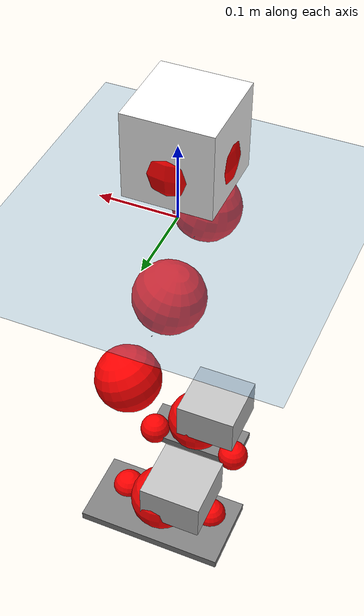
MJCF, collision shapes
<mujoco model="pi_12dof_release_v1">
  <compiler angle="radian" assetdir="assets" balanceinertia="true" inertiafromgeom="false"/>

  <option timestep="0.005" density="1.2" viscosity="2e-05"/>

  <size nkey="1"/>

  <visual>
    <quality shadowsize="8192"/>
    <map shadowclip="0.5"/>
  </visual>

  <default>
    <default class="/">
      <joint armature="0.01" damping="0.01" frictionloss="0.01"/>
      <geom contype="0" conaffinity="0" group="1" solref="-1000 -80"/>
      <site size="0.01 0.005 0.005" group="5"/>
      <general forcelimited="true" biastype="affine" gainprm="20" biasprm="0 -20 -0.5"/>
      <default class="foot">
        <geom size="0.0845 0.036 0.005" type="box" condim="6" group="4" priority="1" friction="0.9 0.2 0.2" solimp="0.015 1 0.005"/>
      </default>
      <default class="reward_collision_sphere">
        <geom group="5" rgba="1 0 0 1"/>
      </default>
    </default>
  </default>

  <asset>
    <texture type="skybox" colorspace="auto" name="//unnamed_texture_0" builtin="gradient" rgb1="0.95 0.95 0.95" rgb2="0.95 0.95 0.95" width="100" height="600"/>
    <texture type="2d" colorspace="auto" name="texplane" builtin="checker" rgb1="0.345 0.575 0.748" rgb2="0.345 0.575 0.748" markrgb="1 1 1" width="512" height="512"/>
    <material name="MatPlane" class="/" texture="texplane" texuniform="true" texrepeat="2 2" specular="0.9"/>
    <mesh name="baselink_1" class="/" file="baselink_1.STL"/>
    <mesh name="r_hip_pitch_link" class="/" file="r_hip_pitch_link.STL"/>
    <mesh name="r_hip_roll_link" class="/" file="r_hip_roll_link.STL"/>
    <mesh name="r_thigh_link" class="/" file="r_thigh_link.STL"/>
    <mesh name="r_calf_link" class="/" file="r_calf_link.STL"/>
    <mesh name="r_ankle_pitch_link" class="/" file="r_ankle_pitch_link.STL"/>
    <mesh name="r_ankle_roll_link" class="/" file="r_ankle_roll_link.STL"/>
    <mesh name="l_hip_pitch_link" class="/" file="l_hip_pitch_link.STL"/>
    <mesh name="l_hip_roll_link" class="/" file="l_hip_roll_link.STL"/>
    <mesh name="l_thigh_link" class="/" file="l_thigh_link.STL"/>
    <mesh name="l_calf_link" class="/" file="l_calf_link.STL"/>
    <mesh name="l_ankle_pitch_link" class="/" file="l_ankle_pitch_link.STL"/>
    <mesh name="l_ankle_roll_link" class="/" file="l_ankle_roll_link.STL"/>
  </asset>

  <worldbody>
    <geom name="floor" class="/" size="100 100 0.125" type="plane" group="0" material="MatPlane"/>
    <light name="toplight_shadow" class="/" pos="0 0 5" dir="0.0990148 0.0990148 -0.990148" type="directional" ambient="0.04 0.04 0.04" diffuse="0.55 0.55 0.55" specular="0.12 0.12 0.12"/>
    <light name="toplight_fill" class="/" pos="0 0 5" dir="0.0990148 0.0990148 -0.990148" type="directional" castshadow="false" ambient="0.04 0.04 0.04" diffuse="0.3 0.3 0.3" specular="0.08 0.08 0.08"/>
    <body name="trunk" pos="-0.00871687 -0.00217856 -0.00163347" quat="1 2.98501e-05 -0.000143449 3.14049e-05">
      <inertial pos="0.00326446 -0.00253262 0.0556895" quat="0.698986 0.016897 0.0267803 0.714434" mass="2.78633" diaginertia="0.00511187 0.00584157 0.0206799"/>
      <joint name="//unnamed_joint_0" type="free"/>
      <geom name="//unnamed_geom_1" class="/" type="mesh" density="0" rgba="1 1 1 1" mesh="baselink_1"/>
      <geom name="//unnamed_geom_2" class="/" size="0.0541544 0.0541544 0.0541544" pos="0 0 0.110725" type="box" rgba="1 1 1 1"/>
      <geom name="//unnamed_geom_3" class="reward_collision_sphere" size="0.0595699" pos="0 0 0.0968844"/>
      <site name="imu" class="/" pos="-0.00353328 -0.00500311 0.0510545" size="0.0108309"/>
      <camera name="track" class="/" pos="0 -1.89579 0" quat="0.707107 0.707107 0 0" mode="trackcom"/>
      <camera name="ego_camera" class="/" pos="0.0687979 0 0.249131" quat="-0.5 -0.5 0.5 0.5"/>
      <body name="r_hip_pitch_link" pos="-0.00312456 -0.0199375 -0.0411032" quat="0.991996 -0.00214595 -0.12622 0.00285049">
        <inertial pos="0.0104872 -0.0502201 4.28852e-05" quat="-0.0152513 0.704672 -0.0309196 0.708695" mass="0.459563" diaginertia="6.88275e-05 7.90459e-05 0.00040657"/>
        <joint name="r_hip_pitch_joint" class="/" pos="0 0 0" axis="-0.0236979 -0.999309 -0.0286318" range="-1.94055 1.14051" armature="0.0110773" damping="0" frictionloss="0.0105309"/>
        <geom name="//unnamed_geom_4" class="/" type="mesh" density="0" rgba="0.75294 0.75294 0.75294 1" mesh="r_hip_pitch_link"/>
        <geom name="//unnamed_geom_5" class="/" size="0.000541544 0.000541544 0.000541544" type="box" rgba="0.75294 0.75294 0.75294 1"/>
        <body name="r_hip_roll_link" pos="0.00540605 -0.0521888 0.00427687" quat="0.999999 0.000464496 0.0011778 0.000288812">
          <inertial pos="-0.000452618 -0.000896009 -0.0734871" quat="0.714269 -0.0681608 -0.0835958 0.69151" mass="0.514349" diaginertia="0.000226127 0.000217237 0.000650705"/>
          <joint name="r_hip_roll_joint" class="/" pos="0 0 0" axis="-0.999257 -0.037484 -0.0089468" stiffness="0.000407156" range="-0.092998 0.326704" armature="0.00922861" damping="0.0230868" frictionloss="0.014199"/>
          <geom name="//unnamed_geom_6" class="/" type="mesh" density="0" rgba="0.75294 0.75294 0.75294 1" mesh="r_hip_roll_link"/>
          <geom name="//unnamed_geom_7" class="/" size="0.000541544 0.000541544 0.000541544" type="box" rgba="0.75294 0.75294 0.75294 1"/>
          <geom name="//unnamed_geom_8" class="reward_collision_sphere" size="0.0433235"/>
          <body name="r_thigh_link" pos="-0.00315788 0.0112869 -0.0950247" quat="0.999995 -0.00209746 0.00097582 -0.00199372">
            <inertial pos="-0.00322162 0.00113989 -0.0658247" quat="0.735419 0.675917 -0.00209278 -0.0478564" mass="0.126716" diaginertia="8.27358e-05 6.89468e-05 0.000303984"/>
            <joint name="r_thigh_joint" class="/" pos="0 0 0" axis="0.0124538 0.0178794 -0.999763" stiffness="0.0513681" range="-0.423724 0.392463" armature="0.0113958" damping="0.0112989" frictionloss="0.012498"/>
            <geom name="//unnamed_geom_9" class="/" type="mesh" density="0" rgba="0.75294 0.75294 0.75294 1" mesh="r_thigh_link"/>
            <geom name="//unnamed_geom_10" class="/" size="0.000541544 0.000541544 0.000541544" type="box" rgba="0.75294 0.75294 0.75294 1"/>
            <body name="r_calf_link" pos="0.0108149 -0.0129096 -0.0896442" quat="0.9475 0.000718992 0.319756 -0.000569834">
              <inertial pos="-0.0107249 -0.00165429 -0.0872416" quat="0.999759 -0.00310539 -0.0195755 -0.00944606" mass="0.915743" diaginertia="0.0019599 0.00250372 0.000780086"/>
              <joint name="r_calf_joint" class="/" pos="0 0 0" axis="-0.0476824 -0.998862 0.000386873" stiffness="0.0166256" range="-1.68406 0.649946" armature="0.00904485" damping="0.00453039" frictionloss="0.0104634"/>
              <geom name="//unnamed_geom_11" class="/" type="mesh" density="0" rgba="0.75294 0.75294 0.75294 1" mesh="r_calf_link"/>
              <geom name="//unnamed_geom_12" class="/" size="0.000541544 0.000541544 0.000541544" type="box" rgba="0.75294 0.75294 0.75294 1"/>
              <geom name="//unnamed_geom_13" class="reward_collision_sphere" size="0.0433235"/>
              <body name="r_ankle_pitch_link" pos="0.00116837 0.00659751 -0.198501" quat="0.980059 6.5856e-05 -0.198706 6.06444e-05">
                <inertial pos="0.00795753 -0.00829534 -0.000749134" quat="0.00222541 0.707102 -0.00222515 0.707105" mass="0.218791" diaginertia="0.000196938 0.000168167 0.000601023"/>
                <joint name="r_ankle_pitch_joint" class="/" pos="0 0 0" axis="0.0267146 -0.999637 -0.00348711" range="-1.35148 0.505463" armature="0.0147201" damping="0" frictionloss="0.0141351"/>
                <geom name="//unnamed_geom_14" class="/" type="mesh" density="0" rgba="0.75294 0.75294 0.75294 1" mesh="r_ankle_pitch_link"/>
                <geom name="//unnamed_geom_15" class="/" size="0.0422405 0.0433235 0.0270772" type="box" rgba="0.75294 0.75294 0.75294 1"/>
                <body name="r_ankle_roll_link" pos="0.0725139 0.00182562 -0.00799836" quat="0.999986 -0.00193286 -0.0039832 -0.00286724">
                  <inertial pos="-0.0335988 0.00556088 -0.0277773" quat="0.559522 0.432656 0.434396 0.557713" mass="0.716068" diaginertia="0.000694377 0.000701653 0.00123546"/>
                  <joint name="r_ankle_roll_joint" class="/" pos="0 0 0" axis="-0.998579 0.0532439 -0.00219142" stiffness="0.0234624" range="-0.135066 0.13631" armature="0.0105621" damping="0" frictionloss="0.0104081"/>
                  <geom name="//unnamed_geom_16" class="/" type="mesh" density="0" rgba="0.75294 0.75294 0.75294 1" mesh="r_ankle_roll_link"/>
                  <geom name="//unnamed_geom_17" class="/" type="mesh" rgba="0.75294 0.75294 0.75294 1" mesh="r_ankle_roll_link"/>
                  <geom name="right_foot" class="foot" size="0.0701353 0.0301289 0.00531027" pos="-0.0467826 0 -0.0608988"/>
                  <geom name="//unnamed_geom_19" class="reward_collision_sphere" size="0.0433235" pos="-0.0458653 0 -0.0276813"/>
                  <geom name="//unnamed_geom_20" class="reward_collision_sphere" size="0.0216618" pos="0.0137596 0.0189579 -0.0553625"/>
                  <geom name="//unnamed_geom_21" class="reward_collision_sphere" size="0.0216618" pos="-0.110077 0.0189579 -0.0553625"/>
                  <site name="right_foot" class="foot" pos="-0.0467826 0 -0.0608988" size="0.0108309"/>
                </body>
              </body>
            </body>
          </body>
        </body>
      </body>
      <body name="l_hip_pitch_link" pos="-0.0120414 0.0305024 -0.0449033" quat="0.992127 9.84595e-05 -0.125235 -0.000151226">
        <inertial pos="-0.00905314 0.0629754 0.000160615" quat="-0.0598033 0.714096 0.0619861 0.694729" mass="0.509481" diaginertia="8.29834e-05 7.94742e-05 0.000556414"/>
        <joint name="l_hip_pitch_joint" class="/" pos="0 0 0" axis="0.00828296 0.998327 0.0572217" stiffness="0.0442383" range="-1.06064 1.77652" armature="0.0160815" damping="0.0126003" frictionloss="0.00900561"/>
        <geom name="//unnamed_geom_22" class="/" type="mesh" density="0" rgba="0.75294 0.75294 0.75294 1" mesh="l_hip_pitch_link"/>
        <geom name="//unnamed_geom_23" class="/" size="0.000541544 0.000541544 0.000541544" type="box" rgba="0.75294 0.75294 0.75294 1"/>
        <body name="l_hip_roll_link" pos="-0.00407534 0.0515778 -7.75404e-05" quat="1 -0.000920572 -9.71852e-05 -0.00025856">
          <inertial pos="-0.00146877 -0.0099172 -0.0832145" quat="0.696615 -0.074292 -0.0442148 0.712217" mass="0.455714" diaginertia="0.000213678 0.000200123 0.000685448"/>
          <joint name="l_hip_roll_joint" class="/" pos="0 0 0" axis="-0.999806 -0.0104163 -0.0166993" stiffness="0.0242751" range="-0.526475 0.0472208" armature="0.00631743" damping="0.0273888" frictionloss="0.0132069"/>
          <geom name="//unnamed_geom_24" class="/" type="mesh" density="0" rgba="0.75294 0.75294 0.75294 1" mesh="l_hip_roll_link"/>
          <geom name="//unnamed_geom_25" class="/" size="0.000541544 0.000541544 0.000541544" type="box" rgba="0.75294 0.75294 0.75294 1"/>
          <geom name="//unnamed_geom_26" class="reward_collision_sphere" size="0.0433235"/>
          <body name="l_thigh_link" pos="0.0053111 -0.00756835 -0.0849944" quat="0.999985 -0.00207324 -0.0045537 0.00235622">
            <inertial pos="0.00187507 -0.00114873 -0.0776968" quat="0.663985 0.747631 -0.0130344 0.00130816" mass="0.161833" diaginertia="8.056e-05 7.62037e-05 0.000304858"/>
            <joint name="l_thigh_joint" class="/" pos="0 0 0" axis="-0.00771144 0.0012942 -0.999969" stiffness="0.00310315" range="-0.405364 0.255061" armature="0.0110767" damping="0.0364044" frictionloss="0.0116025"/>
            <geom name="//unnamed_geom_27" class="/" type="mesh" density="0" rgba="0.75294 0.75294 0.75294 1" mesh="l_thigh_link"/>
            <geom name="//unnamed_geom_28" class="/" size="0.000541544 0.000541544 0.000541544" type="box" rgba="0.75294 0.75294 0.75294 1"/>
            <body name="l_calf_link" pos="0.00995685 -0.0025173 -0.0988056" quat="0.947863 -0.000427064 0.318676 -0.000352906">
              <inertial pos="-0.00603922 -0.000249281 -0.098833" quat="0.998496 0.0171316 0.0266408 0.0447499" mass="1.02067" diaginertia="0.00214814 0.00248402 0.000826343"/>
              <joint name="l_calf_joint" class="/" pos="0 0 0" axis="0.00511987 0.999104 -0.0420035" stiffness="0.00720049" range="-0.767187 1.6079" armature="0.0115326" damping="0.0152161" frictionloss="0.0150426"/>
              <geom name="//unnamed_geom_29" class="/" type="mesh" density="0" rgba="0.75294 0.75294 0.75294 1" mesh="l_calf_link"/>
              <geom name="//unnamed_geom_30" class="/" size="0.000541544 0.000541544 0.000541544" type="box" rgba="0.75294 0.75294 0.75294 1"/>
              <geom name="//unnamed_geom_31" class="reward_collision_sphere" size="0.0433235"/>
              <body name="l_ankle_pitch_link" pos="0.00140995 0.00340818 -0.202531" quat="0.980108 -0.000447021 -0.198461 -0.000861355">
                <inertial pos="0.00396559 -0.00242336 -0.00112631" quat="-0.0312335 0.687616 0.042484 0.724157" mass="0.228561" diaginertia="0.00019898 0.00015626 0.000531854"/>
                <joint name="l_ankle_pitch_joint" class="/" pos="0 0 0" axis="0.00827407 0.999966 7.40162e-05" range="-0.618517 1.19905" armature="0.0113072" damping="0.0382033" frictionloss="0.0110087"/>
                <geom name="//unnamed_geom_32" class="/" type="mesh" density="0" rgba="0.75294 0.75294 0.75294 1" mesh="l_ankle_pitch_link"/>
                <geom name="//unnamed_geom_33" class="/" size="0.0422405 0.0433235 0.0270772" type="box" rgba="0.75294 0.75294 0.75294 1"/>
                <body name="l_ankle_roll_link" pos="0.0723673 0.00436071 -0.000103289" quat="1 -0.000766364 0.00017737 0.000511588">
                  <inertial pos="-0.0133705 0.0107862 -0.0297874" quat="0.556429 0.425748 0.436075 0.56477" mass="0.583516" diaginertia="0.000772022 0.000695836 0.00141902"/>
                  <joint name="l_ankle_roll_joint" class="/" pos="0 0 0" axis="-0.999987 0.00446531 -0.00243518" range="-0.158977 0.253593" armature="0.0113925" damping="0" frictionloss="0.0062336"/>
                  <geom name="//unnamed_geom_34" class="/" type="mesh" density="0" rgba="0.75294 0.75294 0.75294 1" mesh="l_ankle_roll_link"/>
                  <geom name="//unnamed_geom_35" class="/" type="mesh" rgba="0.75294 0.75294 0.75294 1" mesh="l_ankle_roll_link"/>
                  <geom name="left_foot" class="foot" size="0.0997342 0.0518679 0.00578437" pos="-0.0467826 0 -0.0608988"/>
                  <geom name="//unnamed_geom_37" class="reward_collision_sphere" size="0.0433235" pos="-0.0458653 0 -0.0276813"/>
                  <geom name="//unnamed_geom_38" class="reward_collision_sphere" size="0.0216618" pos="0.0137596 -0.0189579 -0.0553625"/>
                  <geom name="//unnamed_geom_39" class="reward_collision_sphere" size="0.0216618" pos="-0.110077 -0.0189579 -0.0553625"/>
                  <site name="left_foot" class="foot" pos="-0.0467826 0 -0.0608988" size="0.0108309"/>
                </body>
              </body>
            </body>
          </body>
        </body>
      </body>
    </body>
  </worldbody>

  <contact>
    <pair class="/" geom1="floor" geom2="right_foot" name="//unnamed_contact_1"/>
    <pair class="/" geom1="floor" geom2="left_foot" name="//unnamed_contact_0"/>
  </contact>

  <actuator>
    <general name="r_hip_pitch_joint" class="/" joint="r_hip_pitch_joint" forcerange="-20.3512 20.3512" gainprm="22.4338" biasprm="0 -22.4338 -0.574598"/>
    <general name="r_hip_roll_joint" class="/" joint="r_hip_roll_joint" forcerange="-14.9741 14.9741" gainprm="22.4338" biasprm="0 -22.4338 -0.574598"/>
    <general name="r_thigh_joint" class="/" joint="r_thigh_joint" forcerange="-24.6254 24.6254" gainprm="22.4338" biasprm="0 -22.4338 -0.574598"/>
    <general name="r_calf_joint" class="/" joint="r_calf_joint" forcerange="-13.8304 13.8304" gainprm="22.4338" biasprm="0 -22.4338 -0.574598"/>
    <general name="r_ankle_pitch_joint" class="/" joint="r_ankle_pitch_joint" forcerange="-23.1866 23.1866" gainprm="22.4338" biasprm="0 -22.4338 -0.574598"/>
    <general name="r_ankle_roll_joint" class="/" joint="r_ankle_roll_joint" forcerange="-21.7607 21.7607" gainprm="22.4338" biasprm="0 -22.4338 -0.574598"/>
    <general name="l_hip_pitch_joint" class="/" joint="l_hip_pitch_joint" forcerange="-22.4419 22.4419" gainprm="22.4338" biasprm="0 -22.4338 -0.574598"/>
    <general name="l_hip_roll_joint" class="/" joint="l_hip_roll_joint" forcerange="-29.4359 29.4359" gainprm="22.4338" biasprm="0 -22.4338 -0.574598"/>
    <general name="l_thigh_joint" class="/" joint="l_thigh_joint" forcerange="-20.5201 20.5201" gainprm="22.4338" biasprm="0 -22.4338 -0.574598"/>
    <general name="l_calf_joint" class="/" joint="l_calf_joint" forcerange="-22.4309 22.4309" gainprm="22.4338" biasprm="0 -22.4338 -0.574598"/>
    <general name="l_ankle_pitch_joint" class="/" joint="l_ankle_pitch_joint" forcerange="-23.6915 23.6915" gainprm="22.4338" biasprm="0 -22.4338 -0.574598"/>
    <general name="l_ankle_roll_joint" class="/" joint="l_ankle_roll_joint" forcerange="-18.7885 18.7885" gainprm="22.4338" biasprm="0 -22.4338 -0.574598"/>
  </actuator>

  <sensor>
    <gyro site="imu" name="imu_angular_velocity"/>
    <velocimeter site="imu" name="imu_linear_velocity"/>
    <framelinvel objtype="site" objname="left_foot" name="left_foot_global_linear_velocity"/>
    <framelinvel objtype="site" objname="right_foot" name="right_foot_global_linear_velocity"/>
  </sensor>

  <keyframe>
    <key name="home" qpos="0 0 0.291 1 0 0 0 0.4 0 0 -0.8 0.4 0 -0.4 0 0 0.8 -0.4 0"/>
  </keyframe>
</mujoco>
